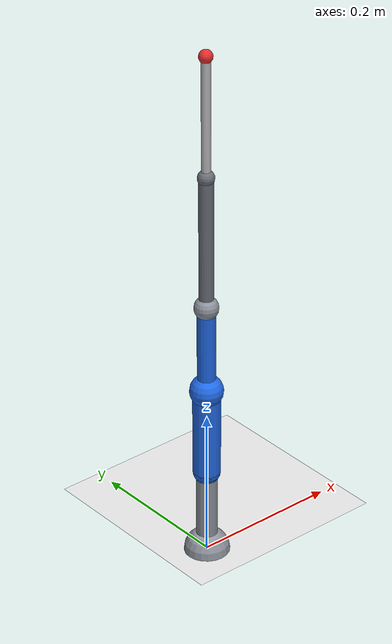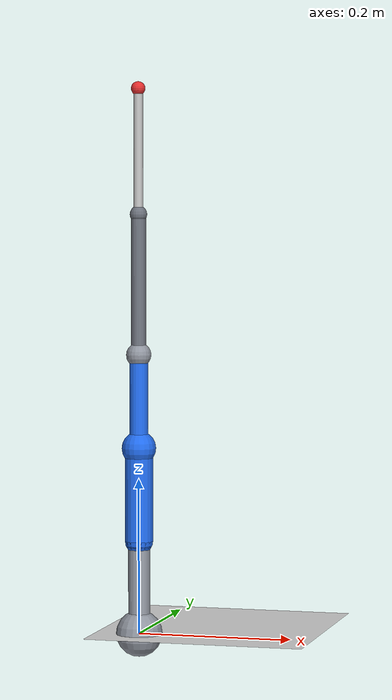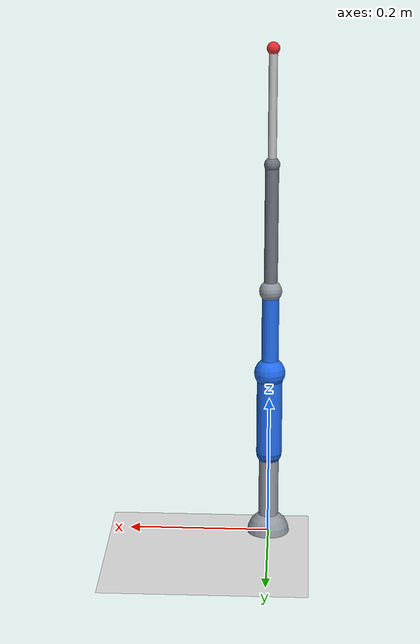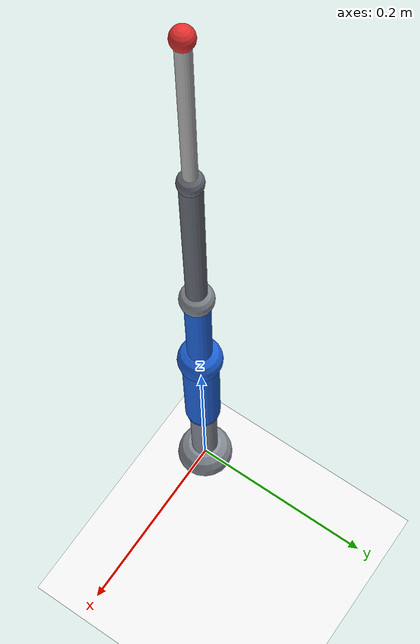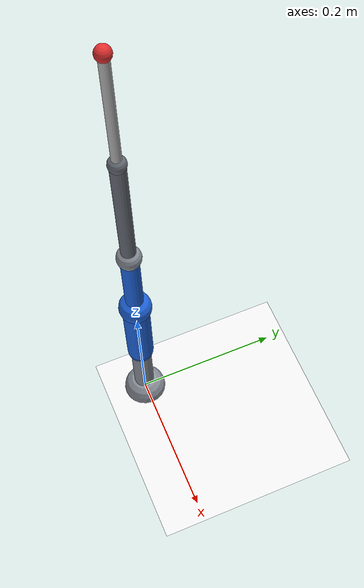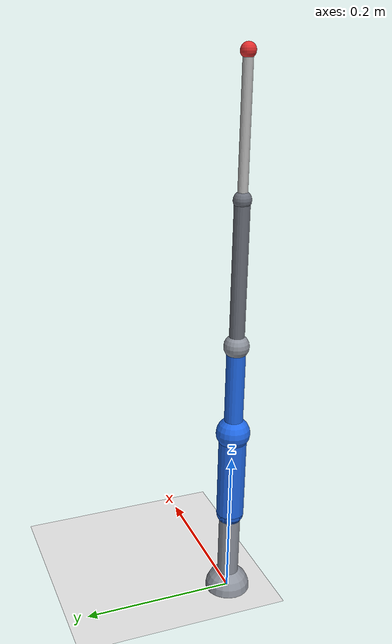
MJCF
<mujoco model="rcm_final_position">
  <compiler angle="degree" autolimits="true"/>
  <option timestep="0.001" gravity="0 0 0" integrator="implicitfast" iterations="100" ls_iterations="30"/>
  <statistic center="0 0 0.28" extent="0.80"/>

  <visual>
    <headlight ambient="0.55 0.55 0.55" diffuse="0.35 0.35 0.35" specular="0.15 0.15 0.15"/>
    <rgba haze="0.96 0.97 0.98 1"/>
  </visual>

  <asset>
    <material name="robot_blue" rgba="0.13 0.42 0.92 1"/>
    <material name="joint_gray" rgba="0.56 0.58 0.62 1"/>
    <material name="sleeve_gray" rgba="0.42 0.44 0.48 1"/>
    <material name="tool_gray" rgba="0.74 0.74 0.74 1"/>
    <texture name="grid" type="2d" builtin="checker" rgb1="0.88 0.88 0.88" rgb2="0.94 0.94 0.94" width="256" height="256"/>
    <material name="floor_grid" texture="grid" texrepeat="6 6" reflectance="0.05"/>
  </asset>

  <default>
    <joint limited="true" damping="0.30" armature="0.02" frictionloss="0.01"/>
    <geom condim="3" contype="1" conaffinity="1"/>
  </default>

  <worldbody>
    <light pos="0 0 1.6" dir="0 0 -1"/>
    <geom name="floor" type="plane" pos="0 0 0" size="1.2 1.2 0.1" material="floor_grid"/>

    <body name="pivot_ref" pos="0 0 0.32">
      <site name="pivot_site" type="sphere" pos="0 0 0" size="0.008" rgba="0.92 0.16 0.16 0.35"/>
    </body>

    <body name="arm_root" pos="0 0 0">
      <geom name="base_sphere" type="sphere" pos="0 0 0" size="0.03" mass="0.35" material="joint_gray"/>
      <joint name="q1" type="hinge" axis="0 0 1" range="-180 180"/>

      <geom name="pedestal" type="cylinder" pos="0 0 0.06" size="0.014 0.06" mass="0.20" material="joint_gray"/>

      <body name="shoulder" pos="0 0 0.12">
        <geom name="shoulder_cap" type="sphere" pos="0 0 0" size="0.018" mass="0.04" material="robot_blue"/>
        <joint name="q2" type="hinge" axis="1 0 0" range="-110 110"/>
        <geom name="upper_arm" type="capsule" fromto="0 0 0 0 0 0.12" size="0.018" mass="0.45" material="robot_blue"/>

        <body name="elbow" pos="0 0 0.12">
          <geom name="elbow_cap" type="sphere" pos="0 0 0" size="0.022" mass="0.05" material="robot_blue"/>
          <joint name="q3" type="hinge" axis="1 0 0" range="-140 140"/>
          <geom name="forearm" type="capsule" fromto="0 0 0 0 0 0.12" size="0.012" mass="0.22" material="robot_blue"/>

          <body name="tool_local_body" pos="0 0 0.12" quat="0.5 -0.5 0.5 -0.5">
            <site name="pend_site" type="sphere" pos="0 0 0" size="0.005" rgba="0.20 0.45 0.95 0.25"/>

            <body name="tool_yaw_body" pos="0 0 0">
              <inertial pos="0 0 0" mass="0.001" diaginertia="1e-6 1e-6 1e-6"/>
              <joint name="tool_yaw" type="hinge" axis="0 0 1" range="-180 180" damping="0.16" frictionloss="0"/>

              <body name="tool_pitch_body" pos="0 0 0">
                <inertial pos="0 0 0" mass="0.001" diaginertia="1e-6 1e-6 1e-6"/>
                <joint name="tool_pitch" type="hinge" axis="-1 0 0" range="-90 90" damping="0.16" frictionloss="0"/>

                <body name="tool_sleeve_body" pos="0 0 0" euler="90 0 0">
                  <geom name="tool_ball_joint_shell" type="sphere" pos="0 0 0" size="0.016" mass="0.02" material="joint_gray"/>
                  <geom name="tool_sleeve_geom" type="capsule" fromto="0 0 0 0 0 0.18" size="0.0095" mass="0.10" material="sleeve_gray"/>
                  <geom name="tool_sleeve_front" type="sphere" pos="0 0 0.18" size="0.011" mass="0.01" material="sleeve_gray"/>
                  <site name="tool_tcp" type="sphere" pos="0 0 0.17" size="0.007" rgba="0.14 0.80 0.24 0.35"/>

                  <body name="tool_slider" pos="0 0 0">
                    <joint name="tool_slide" type="slide" axis="0 0 1" range="0 0.15" damping="0.60"/>
                    <geom name="tool_inner" type="capsule" fromto="0 0 0 0 0 0.34" size="0.006" mass="0.12" material="tool_gray"/>
                    <site name="tool_tip" type="sphere" pos="0 0 0.34" size="0.009" rgba="0.88 0.18 0.18 1"/>
                  </body>
                </body>
              </body>
            </body>
          </body>
        </body>
      </body>
    </body>
  </worldbody>

  <equality>
    <connect name="pivot_tcp_lock" site1="pivot_site" site2="tool_tcp" solref="0.002 1" solimp="0.995 0.999 0.0005"/>
  </equality>

  <actuator>
    <position name="q1_pos" joint="q1" kp="80" kv="18" ctrllimited="true" ctrlrange="-3.14159265 3.14159265" forcelimited="true" forcerange="-18 18"/>
    <position name="q2_pos" joint="q2" kp="90" kv="20" ctrllimited="true" ctrlrange="-1.91986218 1.91986218" forcelimited="true" forcerange="-20 20"/>
    <position name="q3_pos" joint="q3" kp="80" kv="18" ctrllimited="true" ctrlrange="-2.44346095 2.44346095" forcelimited="true" forcerange="-16 16"/>
    <position name="tool_slide_pos" joint="tool_slide" kp="160" kv="24" ctrllimited="true" ctrlrange="0 0.15" forcelimited="true" forcerange="-10 10"/>
  </actuator>

  <keyframe>
    <key name="home" qpos="0 -0.69813170 1.09955743 0 0 0.03" ctrl="0 -0.69813170 1.09955743 0.03"/>
  </keyframe>
</mujoco>
